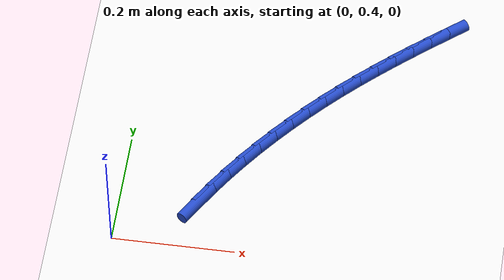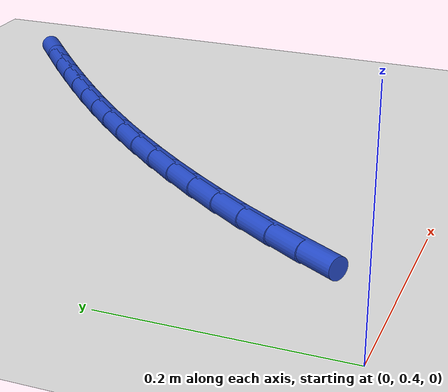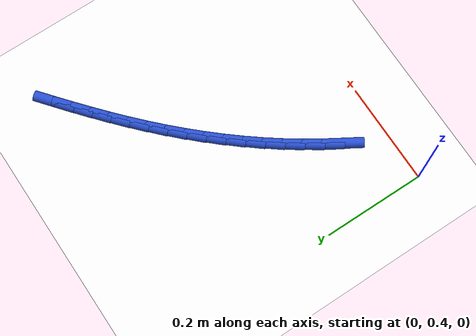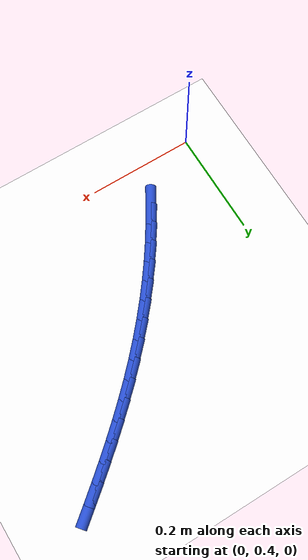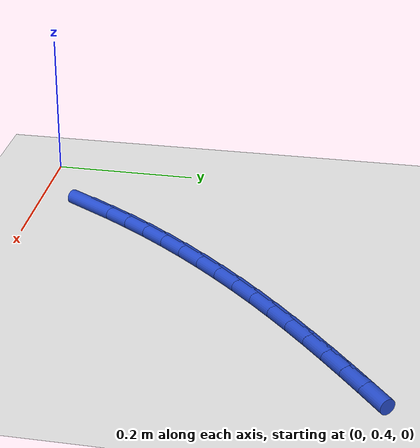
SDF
<sdf version="1.6">
 <world name="default">
  <model name="ground_plane">
   <static>1</static>
   <link name="link">
    <collision name="collision">
     <geometry><plane><normal>0 0 1</normal><size>100 100</size></plane></geometry>
     <surface><friction><ode><mu>100</mu><mu2>50</mu2></ode></friction></surface>
    </collision>
    <visual name="visual">
     <cast_shadows>0</cast_shadows>
     <geometry><plane><normal>0 0 1</normal><size>100 100</size></plane></geometry>
     <material>
      <script><uri>file://media/materials/scripts/gazebo.material</uri><name>Gazebo/WhiteGlow</name></script>
     </material>
    </visual>
   </link>
  </model>
  <model name="line">
   <link name="link_14">
    <pose>0.12760937374401324 0.48238898454718593 0.01 0 1.57 1.0304212655724954</pose>
    <collision name="collision">
     <geometry><cylinder><radius>0.01</radius><length>0.08</length></cylinder></geometry>
    </collision>
    <visual name="visual">
     <material>
      <script><name>Gazebo/Blue</name><uri>file://media/materials/scripts/gazebo.material</uri></script>
     </material>
     <geometry><cylinder><radius>0.01</radius><length>0.08</length></cylinder></geometry>
    </visual>
   </link>
   <link name="link_15">
    <pose>0.14623704656073966 0.513438233369556 0.01 0 1.57 0.9976197381627456</pose>
    <collision name="collision">
     <geometry><cylinder><radius>0.01</radius><length>0.08</length></cylinder></geometry>
    </collision>
    <visual name="visual">
     <material>
      <script><name>Gazebo/Blue</name><uri>file://media/materials/scripts/gazebo.material</uri></script>
     </material>
     <geometry><cylinder><radius>0.01</radius><length>0.08</length></cylinder></geometry>
    </visual>
   </link>
   <link name="link_16">
    <pose>0.1658961069352168 0.5438957048341119 0.01 0 1.57 0.9660812131487029</pose>
    <collision name="collision">
     <geometry><cylinder><radius>0.01</radius><length>0.08</length></cylinder></geometry>
    </collision>
    <visual name="visual">
     <material>
      <script><name>Gazebo/Blue</name><uri>file://media/materials/scripts/gazebo.material</uri></script>
     </material>
     <geometry><cylinder><radius>0.01</radius><length>0.08</length></cylinder></geometry>
    </visual>
   </link>
   <link name="link_17">
    <pose>0.18652432704389635 0.5737449013864753 0.01 0 1.57 0.9357393013796473</pose>
    <collision name="collision">
     <geometry><cylinder><radius>0.01</radius><length>0.08</length></cylinder></geometry>
    </collision>
    <visual name="visual">
     <material>
      <script><name>Gazebo/Blue</name><uri>file://media/materials/scripts/gazebo.material</uri></script>
     </material>
     <geometry><cylinder><radius>0.01</radius><length>0.08</length></cylinder></geometry>
    </visual>
   </link>
   <link name="link_18">
    <pose>0.20805947906322983 0.6029693254722677 0.01 0 1.57 0.9065238802734443</pose>
    <collision name="collision">
     <geometry><cylinder><radius>0.01</radius><length>0.08</length></cylinder></geometry>
    </collision>
    <visual name="visual">
     <material>
      <script><name>Gazebo/Blue</name><uri>file://media/materials/scripts/gazebo.material</uri></script>
     </material>
     <geometry><cylinder><radius>0.01</radius><length>0.08</length></cylinder></geometry>
    </visual>
   </link>
   <link name="link_19">
    <pose>0.23043933516966894 0.6315524795371105 0.01 0 1.57 0.8783622851384897</pose>
    <collision name="collision">
     <geometry><cylinder><radius>0.01</radius><length>0.08</length></cylinder></geometry>
    </collision>
    <visual name="visual">
     <material>
      <script><name>Gazebo/Blue</name><uri>file://media/materials/scripts/gazebo.material</uri></script>
     </material>
     <geometry><cylinder><radius>0.01</radius><length>0.08</length></cylinder></geometry>
    </visual>
   </link>
   <link name="link_20">
    <pose>0.2536016675396654 0.6594778660266256 0.01 0 1.57 0.8511802236176552</pose>
    <collision name="collision">
     <geometry><cylinder><radius>0.01</radius><length>0.08</length></cylinder></geometry>
    </collision>
    <visual name="visual">
     <material>
      <script><name>Gazebo/Blue</name><uri>file://media/materials/scripts/gazebo.material</uri></script>
     </material>
     <geometry><cylinder><radius>0.01</radius><length>0.08</length></cylinder></geometry>
    </visual>
   </link>
   <link name="link_21">
    <pose>0.2774842483496707 0.6867289873864345 0.01 0 1.57 0.8249024401533396</pose>
    <collision name="collision">
     <geometry><cylinder><radius>0.01</radius><length>0.08</length></cylinder></geometry>
    </collision>
    <visual name="visual">
     <material>
      <script><name>Gazebo/Blue</name><uri>file://media/materials/scripts/gazebo.material</uri></script>
     </material>
     <geometry><cylinder><radius>0.01</radius><length>0.08</length></cylinder></geometry>
    </visual>
   </link>
   <link name="link_22">
    <pose>0.30202484977613675 0.7132893460621589 0.01 0 1.57 0.7994531576061562</pose>
    <collision name="collision">
     <geometry><cylinder><radius>0.01</radius><length>0.08</length></cylinder></geometry>
    </collision>
    <visual name="visual">
     <material>
      <script><name>Gazebo/Blue</name><uri>file://media/materials/scripts/gazebo.material</uri></script>
     </material>
     <geometry><cylinder><radius>0.01</radius><length>0.08</length></cylinder></geometry>
    </visual>
   </link>
   <link name="link_23">
    <pose>0.3271612439955148 0.73914244449942 0.01 0 1.57 0.7750389813281787</pose>
    <collision name="collision">
     <geometry><cylinder><radius>0.01</radius><length>0.08</length></cylinder></geometry>
    </collision>
    <visual name="visual">
     <material>
      <script><name>Gazebo/Blue</name><uri>file://media/materials/scripts/gazebo.material</uri></script>
     </material>
     <geometry><cylinder><radius>0.01</radius><length>0.08</length></cylinder></geometry>
    </visual>
   </link>
   <link name="link_24">
    <pose>0.35283468434584553 0.7642894081986968 0.01 0 1.57 0.7528235333998068</pose>
    <collision name="collision">
     <geometry><cylinder><radius>0.01</radius><length>0.08</length></cylinder></geometry>
    </collision>
    <visual name="visual">
     <material>
      <script><name>Gazebo/Blue</name><uri>file://media/materials/scripts/gazebo.material</uri></script>
     </material>
     <geometry><cylinder><radius>0.01</radius><length>0.08</length></cylinder></geometry>
    </visual>
   </link>
   <link name="link_25">
    <pose>0.3790007743834465 0.7888040092979378 0.01 0 1.57 0.7331987667338619</pose>
    <collision name="collision">
     <geometry><cylinder><radius>0.01</radius><length>0.08</length></cylinder></geometry>
    </collision>
    <visual name="visual">
     <material>
      <script><name>Gazebo/Blue</name><uri>file://media/materials/scripts/gazebo.material</uri></script>
     </material>
     <geometry><cylinder><radius>0.01</radius><length>0.08</length></cylinder></geometry>
    </visual>
   </link>
   <link name="link_26">
    <pose>0.4056188148437434 0.8127787365584292 0.01 0 1.57 0.7162407769315573</pose>
    <collision name="collision">
     <geometry><cylinder><radius>0.01</radius><length>0.08</length></cylinder></geometry>
    </collision>
    <visual name="visual">
     <material>
      <script><name>Gazebo/Blue</name><uri>file://media/materials/scripts/gazebo.material</uri></script>
     </material>
     <geometry><cylinder><radius>0.01</radius><length>0.08</length></cylinder></geometry>
    </visual>
   </link>
   <link name="link_27">
    <pose>0.432648106465787 0.8363060787598108 0.01 0 1.57 0.7020008636373285</pose>
    <collision name="collision">
     <geometry><cylinder><radius>0.01</radius><length>0.08</length></cylinder></geometry>
    </collision>
    <visual name="visual">
     <material>
      <script><name>Gazebo/Blue</name><uri>file://media/materials/scripts/gazebo.material</uri></script>
     </material>
     <geometry><cylinder><radius>0.01</radius><length>0.08</length></cylinder></geometry>
    </visual>
   </link>
   <link name="link_28">
    <pose>0.4600479499886284 0.8594785246817216 0.01 0 1.57 0.6905085745159842</pose>
    <collision name="collision">
     <geometry><cylinder><radius>0.01</radius><length>0.08</length></cylinder></geometry>
    </collision>
    <visual name="visual">
     <material>
      <script><name>Gazebo/Blue</name><uri>file://media/materials/scripts/gazebo.material</uri></script>
     </material>
     <geometry><cylinder><radius>0.01</radius><length>0.08</length></cylinder></geometry>
    </visual>
   </link>
   <link name="link_29">
    <pose>0.4877776461513184 0.8823885631038004 0.01 0 1.57 0.6817646961395754</pose>
    <collision name="collision">
     <geometry><cylinder><radius>0.01</radius><length>0.08</length></cylinder></geometry>
    </collision>
    <visual name="visual">
     <material>
      <script><name>Gazebo/Blue</name><uri>file://media/materials/scripts/gazebo.material</uri></script>
     </material>
     <geometry><cylinder><radius>0.01</radius><length>0.08</length></cylinder></geometry>
    </visual>
   </link>
  </model>
 </world>
</sdf>
